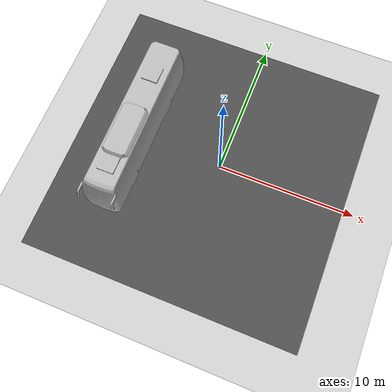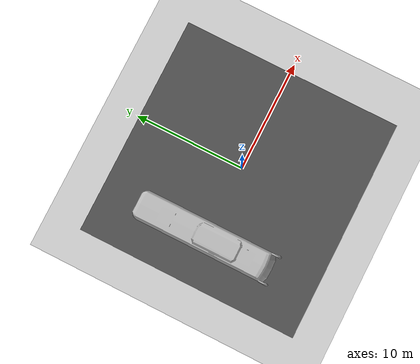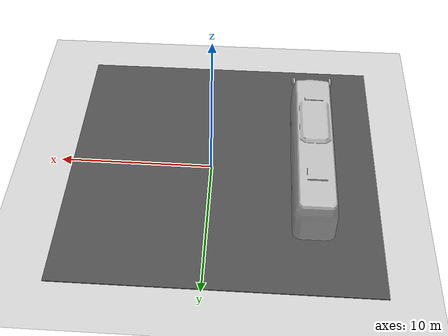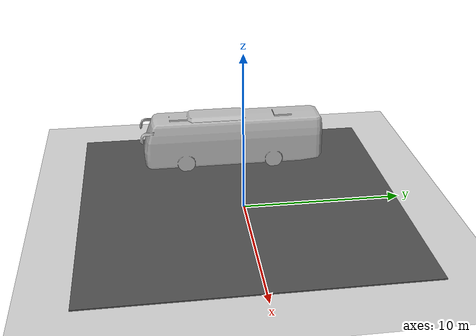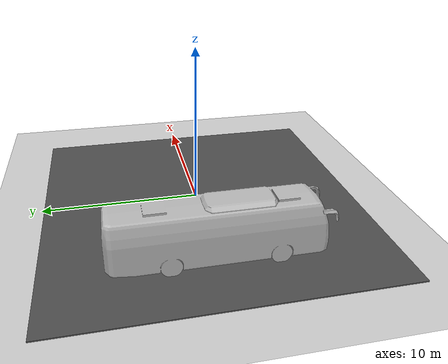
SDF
<sdf version="1.6">
 <world name="default">
  <light name="sun" type="directional">
   <pose>0 0 10 0 -0 0</pose>
   <diffuse>0.8 0.8 0.8 1</diffuse>
   <specular>0.2 0.2 0.2 1</specular>
   <attenuation>
    <range>1000</range>
    <constant>0.9</constant>
    <linear>0.01</linear>
    <quadratic>0.001</quadratic>
   </attenuation>
   <direction>-0.5 0.1 -0.9</direction>
  </light>
  <model name="ground_plane">
   <static>1</static>
   <link name="link">
    <collision name="collision">
     <geometry><plane><normal>0 0 1</normal><size>100 100</size></plane></geometry>
     <surface><friction><ode><mu>100</mu><mu2>50</mu2></ode></friction></surface>
    </collision>
    <visual name="visual">
     <cast_shadows>0</cast_shadows>
     <geometry><plane><normal>0 0 1</normal><size>100 100</size></plane></geometry>
     <material>
      <script><uri>file://media/materials/scripts/gazebo.material</uri><name>Gazebo/Grey</name></script>
     </material>
    </visual>
   </link>
  </model>
  <gravity>0 0 -9.8</gravity>
  <magnetic_field>6e-06 2.3e-05 -4.2e-05</magnetic_field>
  <atmosphere type="adiabatic"/>
  <physics name="default_physics" default="0" type="ode">
   <max_step_size>0.001</max_step_size>
   <real_time_factor>1</real_time_factor>
   <real_time_update_rate>1000</real_time_update_rate>
  </physics>
  <scene><ambient>0.4 0.4 0.4 1</ambient><background>0.7 0.7 0.7 1</background><shadows>1</shadows></scene>
  <spherical_coordinates>
   <surface_model>EARTH_WGS84</surface_model>
   <latitude_deg>0</latitude_deg>
   <longitude_deg>0</longitude_deg>
   <elevation>0</elevation>
   <heading_deg>0</heading_deg>
  </spherical_coordinates>
  <model name="bus">
   <static>0</static>
   <link name="link">
    <collision name="collision">
     <geometry><mesh><scale>0.01 0.01 0.01</scale><uri>model://bus/meshes/bus.obj</uri></mesh></geometry>
    </collision>
    <visual name="visual">
     <geometry><mesh><scale>0.01 0.01 0.01</scale><uri>model://bus/meshes/bus.obj</uri></mesh></geometry>
    </visual>
   </link>
   <plugin name="model_push" filename="libmodel_push.so"/>
   <pose>-6.5016 0.041408 0 0 -0 0</pose>
  </model>
  <model name="asphalt_plane">
   <static>1</static>
   <link name="link">
    <collision name="collision"><geometry><box><size>20 20 0.1</size></box></geometry></collision>
    <visual name="visual">
     <cast_shadows>0</cast_shadows>
     <geometry><box><size>20 20 0.1</size></box></geometry>
     <material>
      <script>
       <uri>model://asphalt_plane/materials/scripts</uri>
       <uri>model://asphalt_plane/materials/textures</uri>
       <name>vrc/asphalt</name>
      </script>
     </material>
    </visual>
   </link>
   <pose>-0.761343 -0.167424 0 0 -0 0</pose>
  </model>
 </world>
</sdf>
